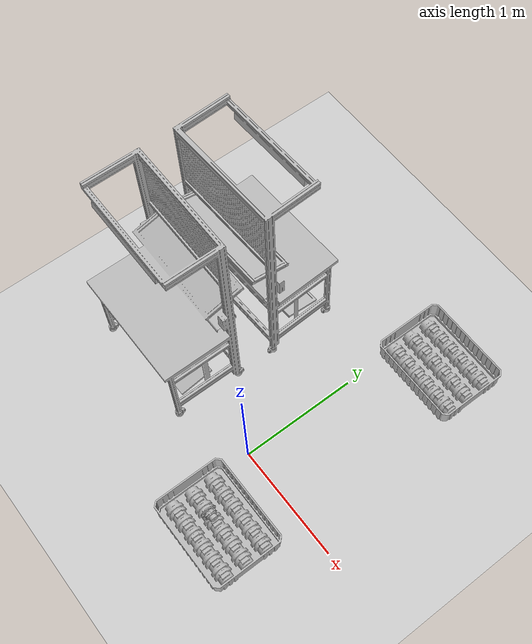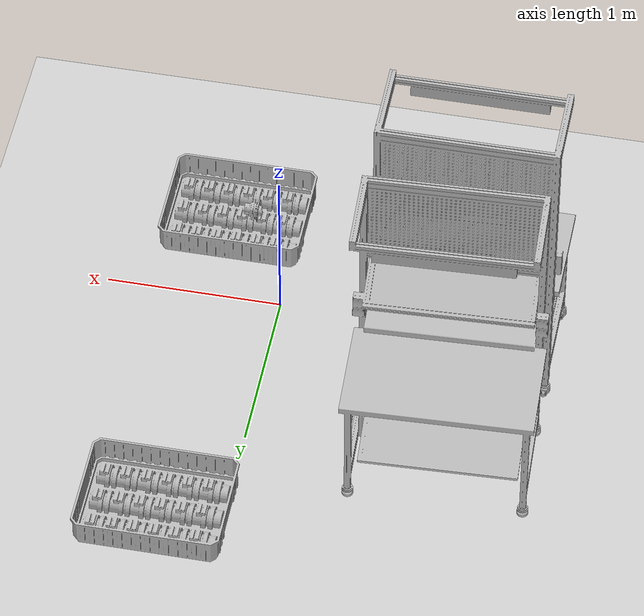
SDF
<sdf version="1.4">
 <world name="default">
  <include><uri>model://ground_plane</uri></include>
  <include><uri>model://sun</uri></include>
  <include><uri>model://test_table</uri><name>table1</name><pose>-1.62 -0.29 0 0 0 0</pose></include>
  <include><uri>model://test_table</uri><name>table2</name><pose>-0.5916 1.345 0 0 0 -3.0986</pose></include>
  <include>
   <uri>model://part</uri>
   <name>part1</name>
   <pose>0.2628 -0.5343 0.1732 3.1415 -1.5368 3.1415</pose>
  </include>
  <include>
   <name>pallet1</name>
   <uri>model://pallet_single</uri>
   <pose>-0.1417 -0.2827 -0.2698 0 0 0</pose>
  </include>
  <include>
   <name>pallet2</name>
   <uri>model://pallet_single</uri>
   <pose>-0.134 1.8929 -0.2698 0 0 0</pose>
  </include>
 </world>
</sdf>

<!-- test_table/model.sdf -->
<sdf version="1.5">
  <model name="test_table">
    <static>true</static>
    <link name="link">
      <pose>0 0 0 0 0 0</pose>
      <collision name="collision">
        <geometry>
          <mesh>
            <uri>model://test_table/meshes/test_table.dae</uri>
            <scale>0.55 0.55 0.55</scale>
          </mesh>
        </geometry>
      </collision>
      <visual name="visual">
        <geometry>
          <mesh>
            <uri>model://test_table/meshes/test_table.dae</uri>
            <scale>0.55 0.55 0.55</scale>
          </mesh>
        </geometry>
      </visual>
    </link>
  </model>
</sdf>

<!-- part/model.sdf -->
<sdf version="1.5">
  <model name="part">
    <static>true</static>
    <link name="link">
      <pose>0 0 0 0 0 0</pose>
      <collision name="collision">
        <geometry>
          <mesh>
            <uri>model://part/meshes/test_part.dae</uri>
            <scale>2.7 2.7 2.7</scale>
          </mesh>
        </geometry>
      </collision>
      <visual name="visual">
        <geometry>
          <mesh>
            <uri>model://part/meshes/test_part.dae</uri>
            <scale>2.7 2.7 2.7</scale>
          </mesh>
        </geometry>
      </visual>
    </link>
  </model>
</sdf>

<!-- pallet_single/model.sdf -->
<sdf version="1.5">
  <model name="pallet_single">
    <static>true</static>
    <link name="link">
      <pose>0 0 0 0 0 0</pose>
      <collision name="collision">
        <geometry>
          <mesh>
            <uri>model://pallet_single/meshes/pallet_single.dae</uri>
            <scale>0.2 0.2 0.2</scale>
          </mesh>
        </geometry>
      </collision>
      <visual name="visual">
        <geometry>
          <mesh>
            <uri>model://pallet_single/meshes/pallet_single.dae</uri>
            <scale>0.2 0.2 0.2</scale>
          </mesh>
        </geometry>
      </visual>
    </link>
  </model>
</sdf>
